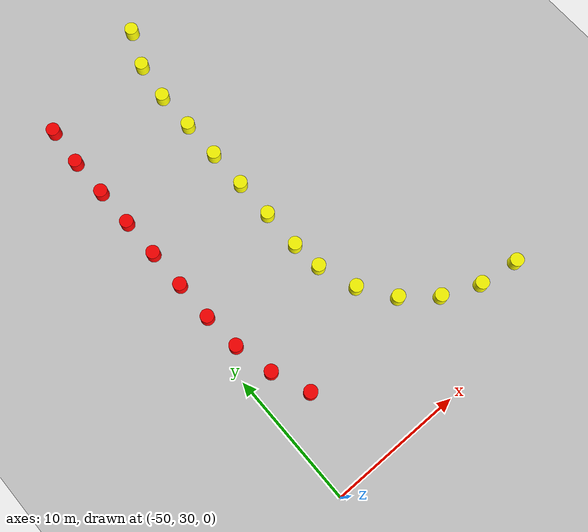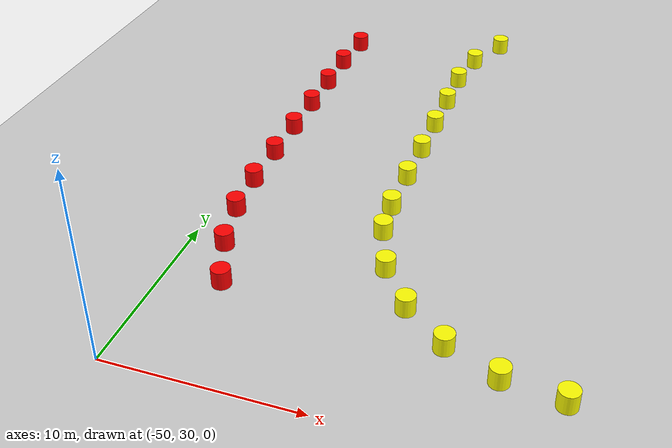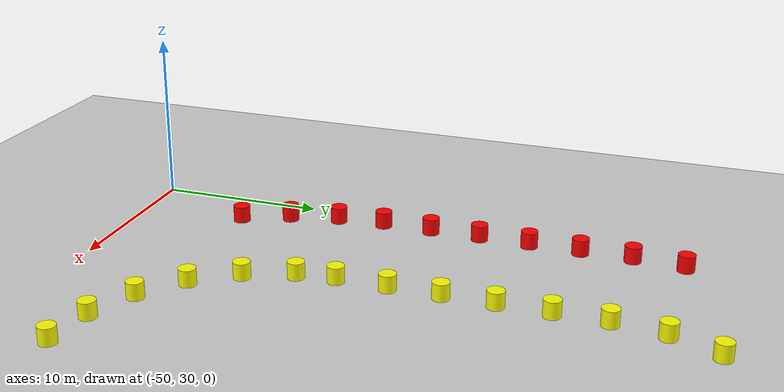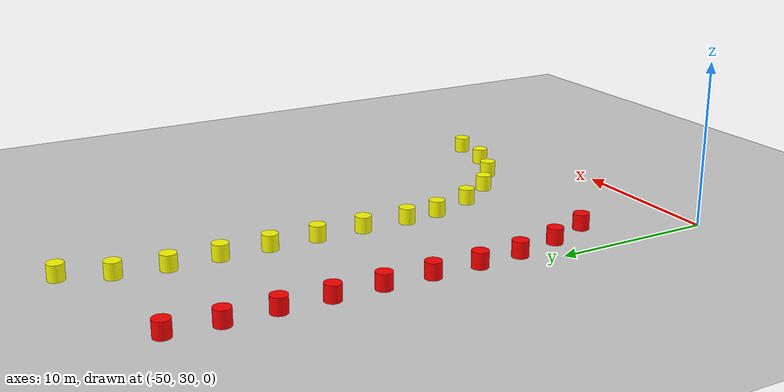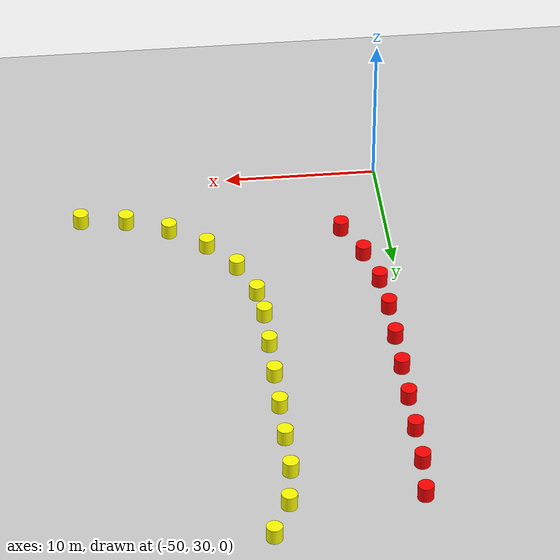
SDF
<sdf version="1.9">
 <world name="empty">
  <model name="ground_plane">
   <static>true</static>
   <link name="link">
    <collision name="collision">
     <geometry><plane><normal>0 0 1</normal><size>1000 1000</size></plane></geometry>
    </collision>
    <visual name="visual">
     <geometry><plane><normal>0 0 1</normal><size>1000 1000</size></plane></geometry>
     <material>
      <ambient>0.8 0.8 0.8 1</ambient>
      <diffuse>0.8 0.8 0.8 1</diffuse>
      <specular>0.8 0.8 0.8 1</specular>
     </material>
    </visual>
    <inertial>
     <mass>1</mass>
     <inertia><ixx>1</ixx><ixy>0</ixy><ixz>0</ixz><iyy>1</iyy><iyz>0</iyz><izz>1</izz></inertia>
    </inertial>
   </link>
  </model>
  <model name="red_cone_25">
   <pose>-46.97806471618236 36.4709133845925 0.5 0 -0 0</pose>
   <link name="cylinder_link">
    <inertial>
     <inertia>
      <ixx>0.14580000000000001</ixx>
      <ixy>0</ixy>
      <ixz>0</ixz>
      <iyy>0.14580000000000001</iyy>
      <iyz>0</iyz>
      <izz>0.125</izz>
     </inertia>
     <mass>1</mass>
    </inertial>
    <collision name="cylinder_collision">
     <geometry><cylinder><radius>0.5</radius><length>1</length></cylinder></geometry>
    </collision>
    <visual name="cylinder_visual">
     <geometry><cylinder><radius>0.5</radius><length>1</length></cylinder></geometry>
     <material><ambient>1 0 0 1</ambient><diffuse>1 0 0 1</diffuse><specular>1 1 1 1</specular></material>
    </visual>
   </link>
   <static>false</static>
  </model>
  <model name="red_cone_26">
   <pose>-48.10797527626812 39.24663303846677 0.5 0 -0 0</pose>
   <link name="cylinder_link">
    <inertial>
     <inertia>
      <ixx>0.14580000000000001</ixx>
      <ixy>0</ixy>
      <ixz>0</ixz>
      <iyy>0.14580000000000001</iyy>
      <iyz>0</iyz>
      <izz>0.125</izz>
     </inertia>
     <mass>1</mass>
    </inertial>
    <collision name="cylinder_collision">
     <geometry><cylinder><radius>0.5</radius><length>1</length></cylinder></geometry>
    </collision>
    <visual name="cylinder_visual">
     <geometry><cylinder><radius>0.5</radius><length>1</length></cylinder></geometry>
     <material><ambient>1 0 0 1</ambient><diffuse>1 0 0 1</diffuse><specular>1 1 1 1</specular></material>
    </visual>
   </link>
   <static>false</static>
  </model>
  <model name="red_cone_27">
   <pose>-48.78737759616635 42.165490684604066 0.5 0 -0 0</pose>
   <link name="cylinder_link">
    <inertial>
     <inertia>
      <ixx>0.14580000000000001</ixx>
      <ixy>0</ixy>
      <ixz>0</ixz>
      <iyy>0.14580000000000001</iyy>
      <iyz>0</iyz>
      <izz>0.125</izz>
     </inertia>
     <mass>1</mass>
    </inertial>
    <collision name="cylinder_collision">
     <geometry><cylinder><radius>0.5</radius><length>1</length></cylinder></geometry>
    </collision>
    <visual name="cylinder_visual">
     <geometry><cylinder><radius>0.5</radius><length>1</length></cylinder></geometry>
     <material><ambient>1 0 0 1</ambient><diffuse>1 0 0 1</diffuse><specular>1 1 1 1</specular></material>
    </visual>
   </link>
   <static>false</static>
  </model>
  <model name="red_cone_28">
   <pose>-49.0 45.0 0.5 0 -0 0</pose>
   <link name="cylinder_link">
    <inertial>
     <inertia>
      <ixx>0.14580000000000001</ixx>
      <ixy>0</ixy>
      <ixz>0</ixz>
      <iyy>0.14580000000000001</iyy>
      <iyz>0</iyz>
      <izz>0.125</izz>
     </inertia>
     <mass>1</mass>
    </inertial>
    <collision name="cylinder_collision">
     <geometry><cylinder><radius>0.5</radius><length>1</length></cylinder></geometry>
    </collision>
    <visual name="cylinder_visual">
     <geometry><cylinder><radius>0.5</radius><length>1</length></cylinder></geometry>
     <material><ambient>1 0 0 1</ambient><diffuse>1 0 0 1</diffuse><specular>1 1 1 1</specular></material>
    </visual>
   </link>
   <static>false</static>
  </model>
  <model name="red_cone_29">
   <pose>-49.0 48.0 0.5 0 -0 0</pose>
   <link name="cylinder_link">
    <inertial>
     <inertia>
      <ixx>0.14580000000000001</ixx>
      <ixy>0</ixy>
      <ixz>0</ixz>
      <iyy>0.14580000000000001</iyy>
      <iyz>0</iyz>
      <izz>0.125</izz>
     </inertia>
     <mass>1</mass>
    </inertial>
    <collision name="cylinder_collision">
     <geometry><cylinder><radius>0.5</radius><length>1</length></cylinder></geometry>
    </collision>
    <visual name="cylinder_visual">
     <geometry><cylinder><radius>0.5</radius><length>1</length></cylinder></geometry>
     <material><ambient>1 0 0 1</ambient><diffuse>1 0 0 1</diffuse><specular>1 1 1 1</specular></material>
    </visual>
   </link>
   <static>false</static>
  </model>
  <model name="red_cone_30">
   <pose>-49.0 51.0 0.5 0 -0 0</pose>
   <link name="cylinder_link">
    <inertial>
     <inertia>
      <ixx>0.14580000000000001</ixx>
      <ixy>0</ixy>
      <ixz>0</ixz>
      <iyy>0.14580000000000001</iyy>
      <iyz>0</iyz>
      <izz>0.125</izz>
     </inertia>
     <mass>1</mass>
    </inertial>
    <collision name="cylinder_collision">
     <geometry><cylinder><radius>0.5</radius><length>1</length></cylinder></geometry>
    </collision>
    <visual name="cylinder_visual">
     <geometry><cylinder><radius>0.5</radius><length>1</length></cylinder></geometry>
     <material><ambient>1 0 0 1</ambient><diffuse>1 0 0 1</diffuse><specular>1 1 1 1</specular></material>
    </visual>
   </link>
   <static>false</static>
  </model>
  <model name="red_cone_31">
   <pose>-49.0 54.0 0.5 0 -0 0</pose>
   <link name="cylinder_link">
    <inertial>
     <inertia>
      <ixx>0.14580000000000001</ixx>
      <ixy>0</ixy>
      <ixz>0</ixz>
      <iyy>0.14580000000000001</iyy>
      <iyz>0</iyz>
      <izz>0.125</izz>
     </inertia>
     <mass>1</mass>
    </inertial>
    <collision name="cylinder_collision">
     <geometry><cylinder><radius>0.5</radius><length>1</length></cylinder></geometry>
    </collision>
    <visual name="cylinder_visual">
     <geometry><cylinder><radius>0.5</radius><length>1</length></cylinder></geometry>
     <material><ambient>1 0 0 1</ambient><diffuse>1 0 0 1</diffuse><specular>1 1 1 1</specular></material>
    </visual>
   </link>
   <static>false</static>
  </model>
  <model name="red_cone_32">
   <pose>-49.0 57.0 0.5 0 -0 0</pose>
   <link name="cylinder_link">
    <inertial>
     <inertia>
      <ixx>0.14580000000000001</ixx>
      <ixy>0</ixy>
      <ixz>0</ixz>
      <iyy>0.14580000000000001</iyy>
      <iyz>0</iyz>
      <izz>0.125</izz>
     </inertia>
     <mass>1</mass>
    </inertial>
    <collision name="cylinder_collision">
     <geometry><cylinder><radius>0.5</radius><length>1</length></cylinder></geometry>
    </collision>
    <visual name="cylinder_visual">
     <geometry><cylinder><radius>0.5</radius><length>1</length></cylinder></geometry>
     <material><ambient>1 0 0 1</ambient><diffuse>1 0 0 1</diffuse><specular>1 1 1 1</specular></material>
    </visual>
   </link>
   <static>false</static>
  </model>
  <model name="red_cone_33">
   <pose>-49.0 60.0 0.5 0 -0 0</pose>
   <link name="cylinder_link">
    <inertial>
     <inertia>
      <ixx>0.14580000000000001</ixx>
      <ixy>0</ixy>
      <ixz>0</ixz>
      <iyy>0.14580000000000001</iyy>
      <iyz>0</iyz>
      <izz>0.125</izz>
     </inertia>
     <mass>1</mass>
    </inertial>
    <collision name="cylinder_collision">
     <geometry><cylinder><radius>0.5</radius><length>1</length></cylinder></geometry>
    </collision>
    <visual name="cylinder_visual">
     <geometry><cylinder><radius>0.5</radius><length>1</length></cylinder></geometry>
     <material><ambient>1 0 0 1</ambient><diffuse>1 0 0 1</diffuse><specular>1 1 1 1</specular></material>
    </visual>
   </link>
   <static>false</static>
  </model>
  <model name="red_cone_34">
   <pose>-49.0 60.0 0.5 0 -0 0</pose>
   <link name="cylinder_link">
    <inertial>
     <inertia>
      <ixx>0.14580000000000001</ixx>
      <ixy>0</ixy>
      <ixz>0</ixz>
      <iyy>0.14580000000000001</iyy>
      <iyz>0</iyz>
      <izz>0.125</izz>
     </inertia>
     <mass>1</mass>
    </inertial>
    <collision name="cylinder_collision">
     <geometry><cylinder><radius>0.5</radius><length>1</length></cylinder></geometry>
    </collision>
    <visual name="cylinder_visual">
     <geometry><cylinder><radius>0.5</radius><length>1</length></cylinder></geometry>
     <material><ambient>1 0 0 1</ambient><diffuse>1 0 0 1</diffuse><specular>1 1 1 1</specular></material>
    </visual>
   </link>
   <static>false</static>
  </model>
  <model name="red_cone_35">
   <pose>-48.76364954024481 62.987550155373256 0.5 0 -0 0</pose>
   <link name="cylinder_link">
    <inertial>
     <inertia>
      <ixx>0.14580000000000001</ixx>
      <ixy>0</ixy>
      <ixz>0</ixz>
      <iyy>0.14580000000000001</iyy>
      <iyz>0</iyz>
      <izz>0.125</izz>
     </inertia>
     <mass>1</mass>
    </inertial>
    <collision name="cylinder_collision">
     <geometry><cylinder><radius>0.5</radius><length>1</length></cylinder></geometry>
    </collision>
    <visual name="cylinder_visual">
     <geometry><cylinder><radius>0.5</radius><length>1</length></cylinder></geometry>
     <material><ambient>1 0 0 1</ambient><diffuse>1 0 0 1</diffuse><specular>1 1 1 1</specular></material>
    </visual>
   </link>
   <static>false</static>
  </model>
  <model name="yellow_cone_22">
   <pose>-30.0 34.0 0.5 0 -0 0</pose>
   <link name="cylinder_link">
    <inertial>
     <inertia>
      <ixx>0.14580000000000001</ixx>
      <ixy>0</ixy>
      <ixz>0</ixz>
      <iyy>0.14580000000000001</iyy>
      <iyz>0</iyz>
      <izz>0.125</izz>
     </inertia>
     <mass>1</mass>
    </inertial>
    <collision name="cylinder_collision">
     <geometry><cylinder><radius>0.5</radius><length>1</length></cylinder></geometry>
    </collision>
    <visual name="cylinder_visual">
     <geometry><cylinder><radius>0.5</radius><length>1</length></cylinder></geometry>
     <material><ambient>1 1 0 1</ambient><diffuse>1 1 0 1</diffuse><specular>1 1 1 1</specular></material>
    </visual>
   </link>
   <static>false</static>
  </model>
  <model name="yellow_cone_23">
   <pose>-32.962947982891585 34.40656150012288 0.5 0 -0 0</pose>
   <link name="cylinder_link">
    <inertial>
     <inertia>
      <ixx>0.14580000000000001</ixx>
      <ixy>0</ixy>
      <ixz>0</ixz>
      <iyy>0.14580000000000001</iyy>
      <iyz>0</iyz>
      <izz>0.125</izz>
     </inertia>
     <mass>1</mass>
    </inertial>
    <collision name="cylinder_collision">
     <geometry><cylinder><radius>0.5</radius><length>1</length></cylinder></geometry>
    </collision>
    <visual name="cylinder_visual">
     <geometry><cylinder><radius>0.5</radius><length>1</length></cylinder></geometry>
     <material><ambient>1 1 0 1</ambient><diffuse>1 1 0 1</diffuse><specular>1 1 1 1</specular></material>
    </visual>
   </link>
   <static>false</static>
  </model>
  <model name="yellow_cone_24">
   <pose>-35.7068740427449 35.59619286351297 0.5 0 -0 0</pose>
   <link name="cylinder_link">
    <inertial>
     <inertia>
      <ixx>0.14580000000000001</ixx>
      <ixy>0</ixy>
      <ixz>0</ixz>
      <iyy>0.14580000000000001</iyy>
      <iyz>0</iyz>
      <izz>0.125</izz>
     </inertia>
     <mass>1</mass>
    </inertial>
    <collision name="cylinder_collision">
     <geometry><cylinder><radius>0.5</radius><length>1</length></cylinder></geometry>
    </collision>
    <visual name="cylinder_visual">
     <geometry><cylinder><radius>0.5</radius><length>1</length></cylinder></geometry>
     <material><ambient>1 1 0 1</ambient><diffuse>1 1 0 1</diffuse><specular>1 1 1 1</specular></material>
    </visual>
   </link>
   <static>false</static>
  </model>
  <model name="yellow_cone_25">
   <pose>-38.02894641681081 37.48095621531695 0.5 0 -0 0</pose>
   <link name="cylinder_link">
    <inertial>
     <inertia>
      <ixx>0.14580000000000001</ixx>
      <ixy>0</ixy>
      <ixz>0</ixz>
      <iyy>0.14580000000000001</iyy>
      <iyz>0</iyz>
      <izz>0.125</izz>
     </inertia>
     <mass>1</mass>
    </inertial>
    <collision name="cylinder_collision">
     <geometry><cylinder><radius>0.5</radius><length>1</length></cylinder></geometry>
    </collision>
    <visual name="cylinder_visual">
     <geometry><cylinder><radius>0.5</radius><length>1</length></cylinder></geometry>
     <material><ambient>1 1 0 1</ambient><diffuse>1 1 0 1</diffuse><specular>1 1 1 1</specular></material>
    </visual>
   </link>
   <static>false</static>
  </model>
  <model name="yellow_cone_26">
   <pose>-39.757516881854016 39.921529334501 0.5 0 -0 0</pose>
   <link name="cylinder_link">
    <inertial>
     <inertia>
      <ixx>0.14580000000000001</ixx>
      <ixy>0</ixy>
      <ixz>0</ixz>
      <iyy>0.14580000000000001</iyy>
      <iyz>0</iyz>
      <izz>0.125</izz>
     </inertia>
     <mass>1</mass>
    </inertial>
    <collision name="cylinder_collision">
     <geometry><cylinder><radius>0.5</radius><length>1</length></cylinder></geometry>
    </collision>
    <visual name="cylinder_visual">
     <geometry><cylinder><radius>0.5</radius><length>1</length></cylinder></geometry>
     <material><ambient>1 1 0 1</ambient><diffuse>1 1 0 1</diffuse><specular>1 1 1 1</specular></material>
    </visual>
   </link>
   <static>false</static>
  </model>
  <model name="yellow_cone_27">
   <pose>-40.7648090376316 42.73750439042966 0.5 0 -0 0</pose>
   <link name="cylinder_link">
    <inertial>
     <inertia>
      <ixx>0.14580000000000001</ixx>
      <ixy>0</ixy>
      <ixz>0</ixz>
      <iyy>0.14580000000000001</iyy>
      <iyz>0</iyz>
      <izz>0.125</izz>
     </inertia>
     <mass>1</mass>
    </inertial>
    <collision name="cylinder_collision">
     <geometry><cylinder><radius>0.5</radius><length>1</length></cylinder></geometry>
    </collision>
    <visual name="cylinder_visual">
     <geometry><cylinder><radius>0.5</radius><length>1</length></cylinder></geometry>
     <material><ambient>1 1 0 1</ambient><diffuse>1 1 0 1</diffuse><specular>1 1 1 1</specular></material>
    </visual>
   </link>
   <static>false</static>
  </model>
  <model name="yellow_cone_28">
   <pose>-41.0 45.0 0.5 0 -0 0</pose>
   <link name="cylinder_link">
    <inertial>
     <inertia>
      <ixx>0.14580000000000001</ixx>
      <ixy>0</ixy>
      <ixz>0</ixz>
      <iyy>0.14580000000000001</iyy>
      <iyz>0</iyz>
      <izz>0.125</izz>
     </inertia>
     <mass>1</mass>
    </inertial>
    <collision name="cylinder_collision">
     <geometry><cylinder><radius>0.5</radius><length>1</length></cylinder></geometry>
    </collision>
    <visual name="cylinder_visual">
     <geometry><cylinder><radius>0.5</radius><length>1</length></cylinder></geometry>
     <material><ambient>1 1 0 1</ambient><diffuse>1 1 0 1</diffuse><specular>1 1 1 1</specular></material>
    </visual>
   </link>
   <static>false</static>
  </model>
  <model name="yellow_cone_29">
   <pose>-41.0 48.0 0.5 0 -0 0</pose>
   <link name="cylinder_link">
    <inertial>
     <inertia>
      <ixx>0.14580000000000001</ixx>
      <ixy>0</ixy>
      <ixz>0</ixz>
      <iyy>0.14580000000000001</iyy>
      <iyz>0</iyz>
      <izz>0.125</izz>
     </inertia>
     <mass>1</mass>
    </inertial>
    <collision name="cylinder_collision">
     <geometry><cylinder><radius>0.5</radius><length>1</length></cylinder></geometry>
    </collision>
    <visual name="cylinder_visual">
     <geometry><cylinder><radius>0.5</radius><length>1</length></cylinder></geometry>
     <material><ambient>1 1 0 1</ambient><diffuse>1 1 0 1</diffuse><specular>1 1 1 1</specular></material>
    </visual>
   </link>
   <static>false</static>
  </model>
  <model name="yellow_cone_30">
   <pose>-41.0 51.0 0.5 0 -0 0</pose>
   <link name="cylinder_link">
    <inertial>
     <inertia>
      <ixx>0.14580000000000001</ixx>
      <ixy>0</ixy>
      <ixz>0</ixz>
      <iyy>0.14580000000000001</iyy>
      <iyz>0</iyz>
      <izz>0.125</izz>
     </inertia>
     <mass>1</mass>
    </inertial>
    <collision name="cylinder_collision">
     <geometry><cylinder><radius>0.5</radius><length>1</length></cylinder></geometry>
    </collision>
    <visual name="cylinder_visual">
     <geometry><cylinder><radius>0.5</radius><length>1</length></cylinder></geometry>
     <material><ambient>1 1 0 1</ambient><diffuse>1 1 0 1</diffuse><specular>1 1 1 1</specular></material>
    </visual>
   </link>
   <static>false</static>
  </model>
  <model name="yellow_cone_31">
   <pose>-41.0 54.0 0.5 0 -0 0</pose>
   <link name="cylinder_link">
    <inertial>
     <inertia>
      <ixx>0.14580000000000001</ixx>
      <ixy>0</ixy>
      <ixz>0</ixz>
      <iyy>0.14580000000000001</iyy>
      <iyz>0</iyz>
      <izz>0.125</izz>
     </inertia>
     <mass>1</mass>
    </inertial>
    <collision name="cylinder_collision">
     <geometry><cylinder><radius>0.5</radius><length>1</length></cylinder></geometry>
    </collision>
    <visual name="cylinder_visual">
     <geometry><cylinder><radius>0.5</radius><length>1</length></cylinder></geometry>
     <material><ambient>1 1 0 1</ambient><diffuse>1 1 0 1</diffuse><specular>1 1 1 1</specular></material>
    </visual>
   </link>
   <static>false</static>
  </model>
  <model name="yellow_cone_32">
   <pose>-41.0 57.0 0.5 0 -0 0</pose>
   <link name="cylinder_link">
    <inertial>
     <inertia>
      <ixx>0.14580000000000001</ixx>
      <ixy>0</ixy>
      <ixz>0</ixz>
      <iyy>0.14580000000000001</iyy>
      <iyz>0</iyz>
      <izz>0.125</izz>
     </inertia>
     <mass>1</mass>
    </inertial>
    <collision name="cylinder_collision">
     <geometry><cylinder><radius>0.5</radius><length>1</length></cylinder></geometry>
    </collision>
    <visual name="cylinder_visual">
     <geometry><cylinder><radius>0.5</radius><length>1</length></cylinder></geometry>
     <material><ambient>1 1 0 1</ambient><diffuse>1 1 0 1</diffuse><specular>1 1 1 1</specular></material>
    </visual>
   </link>
   <static>false</static>
  </model>
  <model name="yellow_cone_33">
   <pose>-41.0 60.0 0.5 0 -0 0</pose>
   <link name="cylinder_link">
    <inertial>
     <inertia>
      <ixx>0.14580000000000001</ixx>
      <ixy>0</ixy>
      <ixz>0</ixz>
      <iyy>0.14580000000000001</iyy>
      <iyz>0</iyz>
      <izz>0.125</izz>
     </inertia>
     <mass>1</mass>
    </inertial>
    <collision name="cylinder_collision">
     <geometry><cylinder><radius>0.5</radius><length>1</length></cylinder></geometry>
    </collision>
    <visual name="cylinder_visual">
     <geometry><cylinder><radius>0.5</radius><length>1</length></cylinder></geometry>
     <material><ambient>1 1 0 1</ambient><diffuse>1 1 0 1</diffuse><specular>1 1 1 1</specular></material>
    </visual>
   </link>
   <static>false</static>
  </model>
  <model name="yellow_cone_34">
   <pose>-41.0 60.0 0.5 0 -0 0</pose>
   <link name="cylinder_link">
    <inertial>
     <inertia>
      <ixx>0.14580000000000001</ixx>
      <ixy>0</ixy>
      <ixz>0</ixz>
      <iyy>0.14580000000000001</iyy>
      <iyz>0</iyz>
      <izz>0.125</izz>
     </inertia>
     <mass>1</mass>
    </inertial>
    <collision name="cylinder_collision">
     <geometry><cylinder><radius>0.5</radius><length>1</length></cylinder></geometry>
    </collision>
    <visual name="cylinder_visual">
     <geometry><cylinder><radius>0.5</radius><length>1</length></cylinder></geometry>
     <material><ambient>1 1 0 1</ambient><diffuse>1 1 0 1</diffuse><specular>1 1 1 1</specular></material>
    </visual>
   </link>
   <static>false</static>
  </model>
  <model name="yellow_cone_35">
   <pose>-40.59343849987712 62.96294798289158 0.5 0 -0 0</pose>
   <link name="cylinder_link">
    <inertial>
     <inertia>
      <ixx>0.14580000000000001</ixx>
      <ixy>0</ixy>
      <ixz>0</ixz>
      <iyy>0.14580000000000001</iyy>
      <iyz>0</iyz>
      <izz>0.125</izz>
     </inertia>
     <mass>1</mass>
    </inertial>
    <collision name="cylinder_collision">
     <geometry><cylinder><radius>0.5</radius><length>1</length></cylinder></geometry>
    </collision>
    <visual name="cylinder_visual">
     <geometry><cylinder><radius>0.5</radius><length>1</length></cylinder></geometry>
     <material><ambient>1 1 0 1</ambient><diffuse>1 1 0 1</diffuse><specular>1 1 1 1</specular></material>
    </visual>
   </link>
   <static>false</static>
  </model>
  <model name="yellow_cone_36">
   <pose>-39.40380713648703 65.7068740427449 0.5 0 -0 0</pose>
   <link name="cylinder_link">
    <inertial>
     <inertia>
      <ixx>0.14580000000000001</ixx>
      <ixy>0</ixy>
      <ixz>0</ixz>
      <iyy>0.14580000000000001</iyy>
      <iyz>0</iyz>
      <izz>0.125</izz>
     </inertia>
     <mass>1</mass>
    </inertial>
    <collision name="cylinder_collision">
     <geometry><cylinder><radius>0.5</radius><length>1</length></cylinder></geometry>
    </collision>
    <visual name="cylinder_visual">
     <geometry><cylinder><radius>0.5</radius><length>1</length></cylinder></geometry>
     <material><ambient>1 1 0 1</ambient><diffuse>1 1 0 1</diffuse><specular>1 1 1 1</specular></material>
    </visual>
   </link>
   <static>false</static>
  </model>
 </world>
</sdf>
